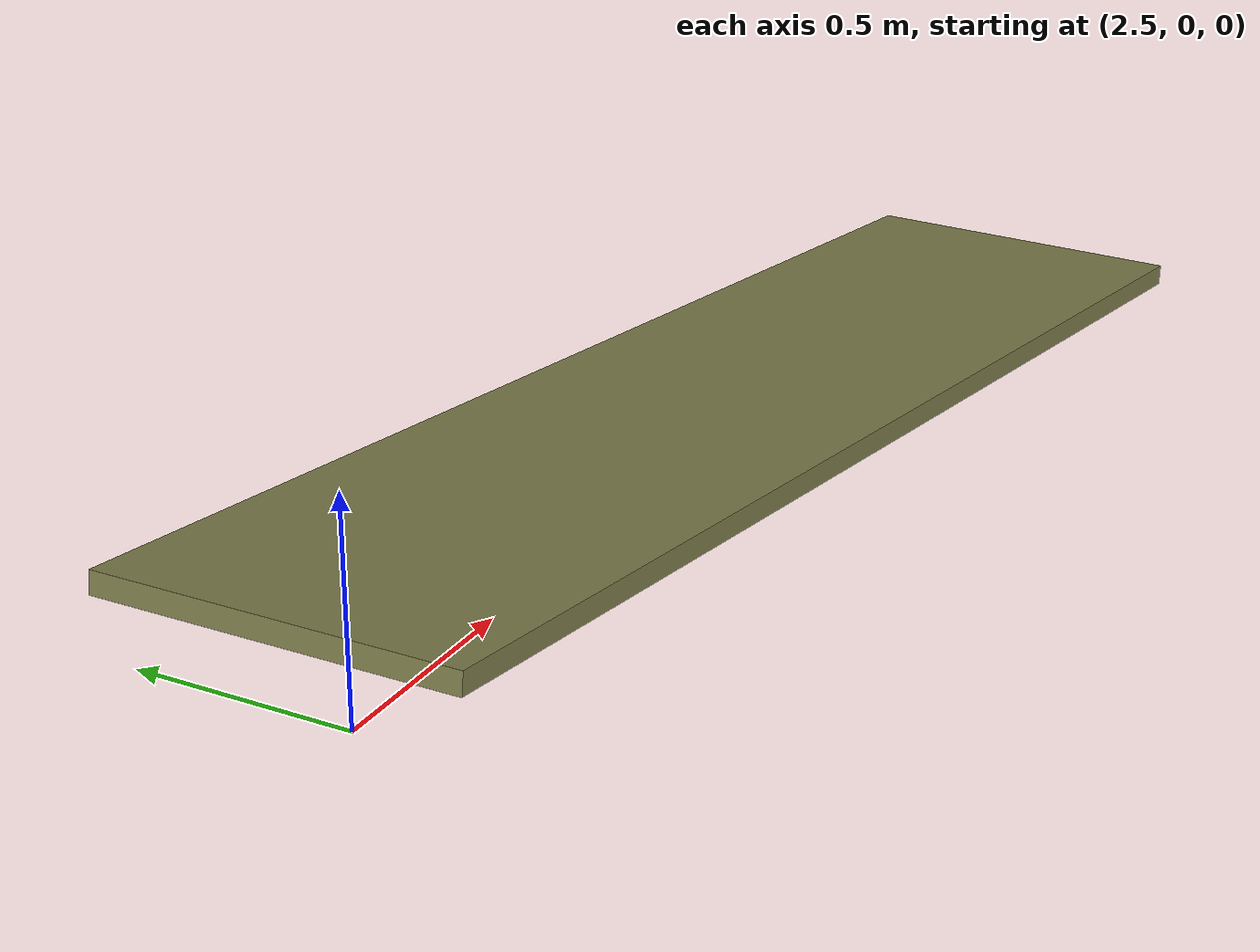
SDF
<?xml version="1.0" ?>
<sdf version="1.6">
  <model name="super_gentle_ramp">
    <static>true</static>

    <!-- 超缓坡：8度坡度，长度3.5米 -->
    <link name="ramp">
      <pose>4.0 0 0.08 0 0.14 0</pose>  <!-- 8度 = 0.14 rad -->

      <collision name="collision">
        <geometry>
          <box>
            <size>3.5 0.8 0.05</size>
          </box>
        </geometry>
        <surface>
          <friction>
            <ode>
              <mu>0.7</mu>
              <mu2>0.7</mu2>
            </ode>
          </friction>
        </surface>
      </collision>

      <visual name="visual">
        <geometry>
          <box>
            <size>3.5 0.8 0.05</size>
          </box>
        </geometry>
        <material>
          <ambient>0.5 0.5 0.3 1</ambient>
        </material>
      </visual>
    </link>
  </model>
</sdf>
